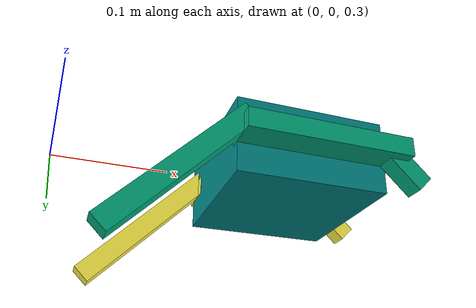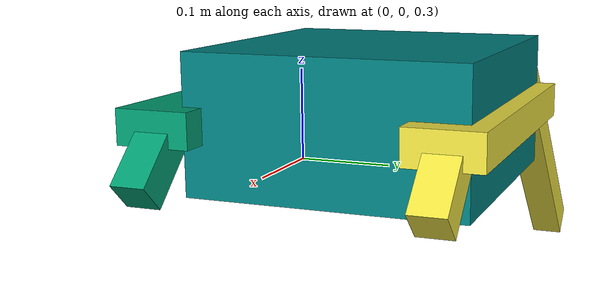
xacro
<?xml version='1.0'?>

<robot name="mark1" xmlns:xacro="http://www.ros.org/wiki/xacro">

  <!--xacro:include filename="$(find astromech_description)/urdf/materials.xacro" /-->
  <!--xacro:include filename="$(find astromech_description)/urdf/macros.xacro"/-->

<link name='world'/>

<joint name="joint_n" type="fixed">
  <origin xyz="0.0 0.0 0.2" rpy="0.0 0.0 0.0"/>
  <parent link="world"/>
  <child link="chassis"/>
</joint>

<link name='chassis'>
    <pose>0.299 0.1954 0.2118 0 0 0</pose >
<!-- estos valores no se si sirve/-->
    <inertial>
      <mass value="4"/>
      <origin xyz="0.299 0.1954 0.2118" rpy=" 0 0 0"/>
      <inertia
          ixx="0.01" ixy="0" ixz="0"
          iyy="0.01" iyz="0"
          izz="0.01"
      />
    </inertial>

    <collision name='collision'>
      <origin xyz="0.299 0.1954 0.2118" rpy=" 0 0 0"/>
      <geometry>
        <box size="0.2000 0.2000 0.100"/>
      </geometry>
    </collision>

    <visual name='chassis_visual'>
      <origin xyz="0.299 0.1954 0.2118" rpy=" 0 0 0"/>
      <geometry>
        <box size="0.2000 0.2000 0.100"/>
      </geometry>
      <material name="orange">
        <color rgba="0 0.5 0.5 1"/>
      </material>
    </visual>
  </link>

  <joint name="joint_1" type="revolute">
    <origin xyz="0.0 0.0 0.0" rpy="0.0 0.0 0.0"/>
    <parent link="chassis"/>
    <child link="right_leg_rocker"/>
    <axis xyz="0.0 1.0 0.0"/>
    <limit lower="0.0" upper="0.0" effort="0.0" velocity="0.0"/>
  </joint>

  <link name="right_leg_rocker">
    <visual name="r_up_part">
      <geometry>
        <box size="0.2195 0.054 0.0254"/>
      </geometry>
      <origin rpy="0 0 0" xyz="0.30859 0.0827 0.21179"/>
    </visual>

    <visual name="r_down_part">
      <geometry>
        <box size="0.225 0.0254 0.0254"/>
      </geometry>
      <origin rpy="0 -0.78 0" xyz="0.12954 0.0827 0.15"/>
    </visual>

    <visual name="r_front_part">
      <geometry>
        <box size="0.056 0.0254 0.0254"/>
      </geometry>
      <origin rpy="0 0.78 0" xyz="0.42 0.0827 0.19"/>
    </visual>

    <inertial>
      <mass value="2"/>
      <origin rpy="0 -0.78 0" xyz="0.30859 0.0827 0.21179"/>
      <inertia
          ixx="0.01" ixy="0" ixz="0"
          iyy="0.1" iyz="0"
          izz="0.01"
      />
    </inertial>
  </link>

  <joint name="joint_l" type="revolute">
    <origin xyz="0.0 0.0 0.0" rpy="0.0 0.0 0.0"/>
    <parent link="chassis"/>
    <child link="left_leg_rocker"/>
    <axis xyz="0.0 1.0 0.0"/>
    <limit lower="0.0" upper="0.0" effort="0.0" velocity="0.0"/>
  </joint>

  <link name="left_leg_rocker">
    <visual name="l_up_part">
      <geometry>
        <box size="0.2195 0.054 0.0254"/>
      </geometry>
      <origin rpy="0 0 0" xyz="0.30859 0.2827 0.21179"/>
    </visual>

    <visual name="l_down_part">
      <geometry>
        <box size="0.225 0.0254 0.0254"/>
      </geometry>
      <origin rpy="0 -0.78 0" xyz="0.12954 0.2827 0.15"/>
    </visual>

    <visual name="l_front_part">
      <geometry>
        <box size="0.056 0.0254 0.0254"/>
      </geometry>
      <origin rpy="0 0.78 0" xyz="0.42 0.2827 0.19"/>
    </visual>

    <inertial>
      <mass value="2"/>
      <origin rpy="0 -0.78 0" xyz="0.30859 0.2827 0.21179"/>
      <inertia
          ixx="0.01" ixy="0" ixz="0"
          iyy="0.1" iyz="0"
          izz="0.01"
      />
    </inertial>
  </link>

</robot>
